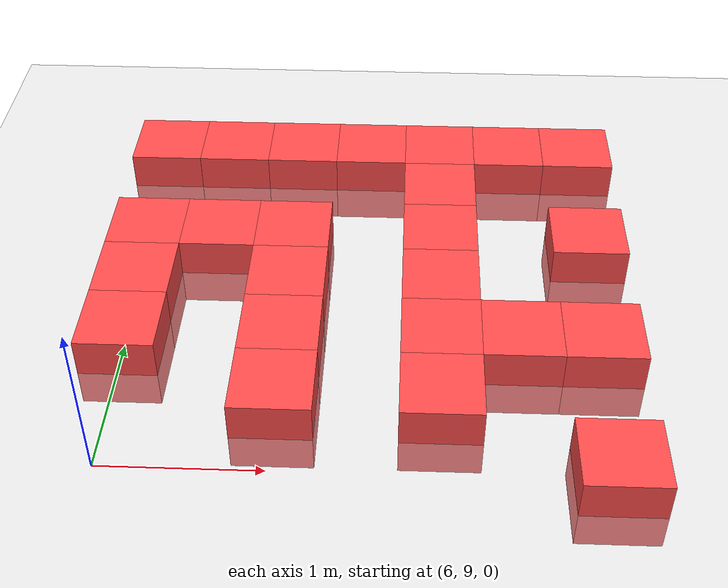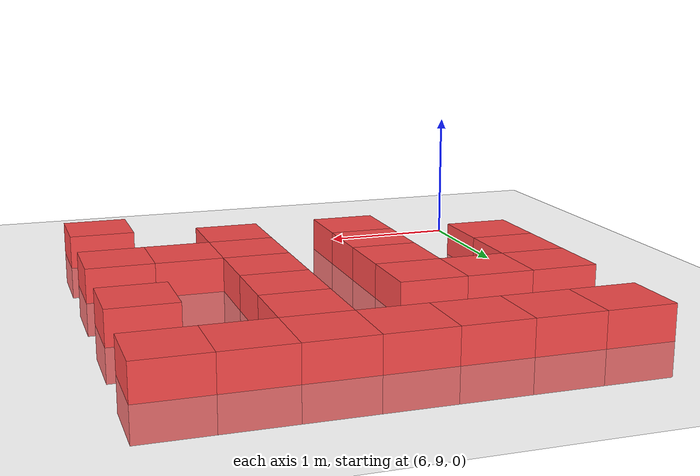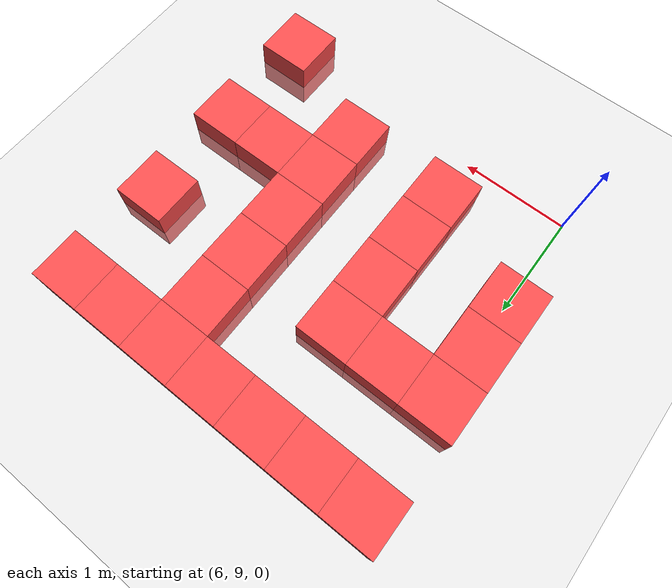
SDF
<sdf version="1.6">
 <world name="default">
  <model name="ground_plane">
   <static>1</static>
   <link name="link">
    <collision name="collision">
     <geometry><plane><normal>0 0 1</normal><size>100 100</size></plane></geometry>
     <surface><friction><ode><mu>100</mu><mu2>50</mu2></ode></friction></surface>
    </collision>
    <visual name="visual">
     <cast_shadows>0</cast_shadows>
     <geometry><plane><normal>0 0 1</normal><size>100 100</size></plane></geometry>
     <material>
      <script><uri>file://media/materials/scripts/gazebo.material</uri><name>Gazebo/Grey</name></script>
     </material>
    </visual>
   </link>
  </model>
  <model name="Box_Red_320">
   <link name="link_0">
    <inertial>
     <mass>1</mass>
     <inertia>
      <ixx>0.166667</ixx>
      <ixy>0</ixy>
      <ixz>0</ixz>
      <iyy>0.166667</iyy>
      <iyz>0</iyz>
      <izz>0.166667</izz>
     </inertia>
    </inertial>
    <visual name="visual">
     <geometry><box><size>0.5 0.5 0.5</size></box></geometry>
     <material>
      <lighting>1</lighting>
      <script><uri>file://media/materials/scripts/gazebo.material</uri><name>Gazebo/Grey</name></script>
      <ambient>1 0.3 0.3 1</ambient>
      <diffuse>0.7 0.7 0.7 1</diffuse>
      <specular>0.01 0.01 0.01 1</specular>
      <emissive>0 0 0 1</emissive>
      <shader type="vertex"><normal_map>__default__</normal_map></shader>
     </material>
    </visual>
    <collision name="collision">
     <geometry><box><size>0.5 0.5 0.5</size></box></geometry>
     <surface>
      <friction>
       <ode><mu>1</mu><mu2>1</mu2><fdir1>0 0 0</fdir1><slip1>0</slip1><slip2>0</slip2></ode>
       <torsional>
        <coefficient>1</coefficient>
        <patch_radius>0</patch_radius>
        <surface_radius>0</surface_radius>
        <use_patch_radius>1</use_patch_radius>
        <ode><slip>0</slip></ode>
       </torsional>
      </friction>
      <bounce><restitution_coefficient>0</restitution_coefficient><threshold>1e+06</threshold></bounce>
      <contact>
       <collide_without_contact>0</collide_without_contact>
       <collide_without_contact_bitmask>1</collide_without_contact_bitmask>
       <collide_bitmask>1</collide_bitmask>
       <ode>
        <soft_cfm>0</soft_cfm>
        <soft_erp>0.2</soft_erp>
        <kp>1e+13</kp>
        <kd>1</kd>
        <max_vel>0.01</max_vel>
        <min_depth>0</min_depth>
       </ode>
       <bullet>
        <split_impulse>1</split_impulse>
        <split_impulse_penetration_threshold>-0.01</split_impulse_penetration_threshold>
        <soft_cfm>0</soft_cfm>
        <soft_erp>0.2</soft_erp>
        <kp>1e+13</kp>
        <kd>1</kd>
       </bullet>
      </contact>
     </surface>
    </collision>
   </link>
   <static>0</static>
   <pose>6.000 10.000 0.000 0 0 0</pose>
  </model>
  <model name="Box_Red_321">
   <link name="link_0">
    <inertial>
     <mass>1</mass>
     <inertia>
      <ixx>0.166667</ixx>
      <ixy>0</ixy>
      <ixz>0</ixz>
      <iyy>0.166667</iyy>
      <iyz>0</iyz>
      <izz>0.166667</izz>
     </inertia>
    </inertial>
    <visual name="visual">
     <geometry><box><size>0.5 0.5 0.5</size></box></geometry>
     <material>
      <lighting>1</lighting>
      <script><uri>file://media/materials/scripts/gazebo.material</uri><name>Gazebo/Grey</name></script>
      <ambient>1 0.3 0.3 1</ambient>
      <diffuse>0.7 0.7 0.7 1</diffuse>
      <specular>0.01 0.01 0.01 1</specular>
      <emissive>0 0 0 1</emissive>
      <shader type="vertex"><normal_map>__default__</normal_map></shader>
     </material>
    </visual>
    <collision name="collision">
     <geometry><box><size>0.5 0.5 0.5</size></box></geometry>
     <surface>
      <friction>
       <ode><mu>1</mu><mu2>1</mu2><fdir1>0 0 0</fdir1><slip1>0</slip1><slip2>0</slip2></ode>
       <torsional>
        <coefficient>1</coefficient>
        <patch_radius>0</patch_radius>
        <surface_radius>0</surface_radius>
        <use_patch_radius>1</use_patch_radius>
        <ode><slip>0</slip></ode>
       </torsional>
      </friction>
      <bounce><restitution_coefficient>0</restitution_coefficient><threshold>1e+06</threshold></bounce>
      <contact>
       <collide_without_contact>0</collide_without_contact>
       <collide_without_contact_bitmask>1</collide_without_contact_bitmask>
       <collide_bitmask>1</collide_bitmask>
       <ode>
        <soft_cfm>0</soft_cfm>
        <soft_erp>0.2</soft_erp>
        <kp>1e+13</kp>
        <kd>1</kd>
        <max_vel>0.01</max_vel>
        <min_depth>0</min_depth>
       </ode>
       <bullet>
        <split_impulse>1</split_impulse>
        <split_impulse_penetration_threshold>-0.01</split_impulse_penetration_threshold>
        <soft_cfm>0</soft_cfm>
        <soft_erp>0.2</soft_erp>
        <kp>1e+13</kp>
        <kd>1</kd>
       </bullet>
      </contact>
     </surface>
    </collision>
   </link>
   <static>0</static>
   <pose>6.000 10.500 0.000 0 0 0</pose>
  </model>
  <model name="Box_Red_322">
   <link name="link_0">
    <inertial>
     <mass>1</mass>
     <inertia>
      <ixx>0.166667</ixx>
      <ixy>0</ixy>
      <ixz>0</ixz>
      <iyy>0.166667</iyy>
      <iyz>0</iyz>
      <izz>0.166667</izz>
     </inertia>
    </inertial>
    <visual name="visual">
     <geometry><box><size>0.5 0.5 0.5</size></box></geometry>
     <material>
      <lighting>1</lighting>
      <script><uri>file://media/materials/scripts/gazebo.material</uri><name>Gazebo/Grey</name></script>
      <ambient>1 0.3 0.3 1</ambient>
      <diffuse>0.7 0.7 0.7 1</diffuse>
      <specular>0.01 0.01 0.01 1</specular>
      <emissive>0 0 0 1</emissive>
      <shader type="vertex"><normal_map>__default__</normal_map></shader>
     </material>
    </visual>
    <collision name="collision">
     <geometry><box><size>0.5 0.5 0.5</size></box></geometry>
     <surface>
      <friction>
       <ode><mu>1</mu><mu2>1</mu2><fdir1>0 0 0</fdir1><slip1>0</slip1><slip2>0</slip2></ode>
       <torsional>
        <coefficient>1</coefficient>
        <patch_radius>0</patch_radius>
        <surface_radius>0</surface_radius>
        <use_patch_radius>1</use_patch_radius>
        <ode><slip>0</slip></ode>
       </torsional>
      </friction>
      <bounce><restitution_coefficient>0</restitution_coefficient><threshold>1e+06</threshold></bounce>
      <contact>
       <collide_without_contact>0</collide_without_contact>
       <collide_without_contact_bitmask>1</collide_without_contact_bitmask>
       <collide_bitmask>1</collide_bitmask>
       <ode>
        <soft_cfm>0</soft_cfm>
        <soft_erp>0.2</soft_erp>
        <kp>1e+13</kp>
        <kd>1</kd>
        <max_vel>0.01</max_vel>
        <min_depth>0</min_depth>
       </ode>
       <bullet>
        <split_impulse>1</split_impulse>
        <split_impulse_penetration_threshold>-0.01</split_impulse_penetration_threshold>
        <soft_cfm>0</soft_cfm>
        <soft_erp>0.2</soft_erp>
        <kp>1e+13</kp>
        <kd>1</kd>
       </bullet>
      </contact>
     </surface>
    </collision>
   </link>
   <static>0</static>
   <pose>6.000 11.000 0.000 0 0 0</pose>
  </model>
  <model name="Box_Red_324">
   <link name="link_0">
    <inertial>
     <mass>1</mass>
     <inertia>
      <ixx>0.166667</ixx>
      <ixy>0</ixy>
      <ixz>0</ixz>
      <iyy>0.166667</iyy>
      <iyz>0</iyz>
      <izz>0.166667</izz>
     </inertia>
    </inertial>
    <visual name="visual">
     <geometry><box><size>0.5 0.5 0.5</size></box></geometry>
     <material>
      <lighting>1</lighting>
      <script><uri>file://media/materials/scripts/gazebo.material</uri><name>Gazebo/Grey</name></script>
      <ambient>1 0.3 0.3 1</ambient>
      <diffuse>0.7 0.7 0.7 1</diffuse>
      <specular>0.01 0.01 0.01 1</specular>
      <emissive>0 0 0 1</emissive>
      <shader type="vertex"><normal_map>__default__</normal_map></shader>
     </material>
    </visual>
    <collision name="collision">
     <geometry><box><size>0.5 0.5 0.5</size></box></geometry>
     <surface>
      <friction>
       <ode><mu>1</mu><mu2>1</mu2><fdir1>0 0 0</fdir1><slip1>0</slip1><slip2>0</slip2></ode>
       <torsional>
        <coefficient>1</coefficient>
        <patch_radius>0</patch_radius>
        <surface_radius>0</surface_radius>
        <use_patch_radius>1</use_patch_radius>
        <ode><slip>0</slip></ode>
       </torsional>
      </friction>
      <bounce><restitution_coefficient>0</restitution_coefficient><threshold>1e+06</threshold></bounce>
      <contact>
       <collide_without_contact>0</collide_without_contact>
       <collide_without_contact_bitmask>1</collide_without_contact_bitmask>
       <collide_bitmask>1</collide_bitmask>
       <ode>
        <soft_cfm>0</soft_cfm>
        <soft_erp>0.2</soft_erp>
        <kp>1e+13</kp>
        <kd>1</kd>
        <max_vel>0.01</max_vel>
        <min_depth>0</min_depth>
       </ode>
       <bullet>
        <split_impulse>1</split_impulse>
        <split_impulse_penetration_threshold>-0.01</split_impulse_penetration_threshold>
        <soft_cfm>0</soft_cfm>
        <soft_erp>0.2</soft_erp>
        <kp>1e+13</kp>
        <kd>1</kd>
       </bullet>
      </contact>
     </surface>
    </collision>
   </link>
   <static>0</static>
   <pose>6.000 12.000 0.000 0 0 0</pose>
  </model>
  <model name="Box_Red_347">
   <link name="link_0">
    <inertial>
     <mass>1</mass>
     <inertia>
      <ixx>0.166667</ixx>
      <ixy>0</ixy>
      <ixz>0</ixz>
      <iyy>0.166667</iyy>
      <iyz>0</iyz>
      <izz>0.166667</izz>
     </inertia>
    </inertial>
    <visual name="visual">
     <geometry><box><size>0.5 0.5 0.5</size></box></geometry>
     <material>
      <lighting>1</lighting>
      <script><uri>file://media/materials/scripts/gazebo.material</uri><name>Gazebo/Grey</name></script>
      <ambient>1 0.3 0.3 1</ambient>
      <diffuse>0.7 0.7 0.7 1</diffuse>
      <specular>0.01 0.01 0.01 1</specular>
      <emissive>0 0 0 1</emissive>
      <shader type="vertex"><normal_map>__default__</normal_map></shader>
     </material>
    </visual>
    <collision name="collision">
     <geometry><box><size>0.5 0.5 0.5</size></box></geometry>
     <surface>
      <friction>
       <ode><mu>1</mu><mu2>1</mu2><fdir1>0 0 0</fdir1><slip1>0</slip1><slip2>0</slip2></ode>
       <torsional>
        <coefficient>1</coefficient>
        <patch_radius>0</patch_radius>
        <surface_radius>0</surface_radius>
        <use_patch_radius>1</use_patch_radius>
        <ode><slip>0</slip></ode>
       </torsional>
      </friction>
      <bounce><restitution_coefficient>0</restitution_coefficient><threshold>1e+06</threshold></bounce>
      <contact>
       <collide_without_contact>0</collide_without_contact>
       <collide_without_contact_bitmask>1</collide_without_contact_bitmask>
       <collide_bitmask>1</collide_bitmask>
       <ode>
        <soft_cfm>0</soft_cfm>
        <soft_erp>0.2</soft_erp>
        <kp>1e+13</kp>
        <kd>1</kd>
        <max_vel>0.01</max_vel>
        <min_depth>0</min_depth>
       </ode>
       <bullet>
        <split_impulse>1</split_impulse>
        <split_impulse_penetration_threshold>-0.01</split_impulse_penetration_threshold>
        <soft_cfm>0</soft_cfm>
        <soft_erp>0.2</soft_erp>
        <kp>1e+13</kp>
        <kd>1</kd>
       </bullet>
      </contact>
     </surface>
    </collision>
   </link>
   <static>0</static>
   <pose>6.500 11.000 0.000 0 0 0</pose>
  </model>
  <model name="Box_Red_349">
   <link name="link_0">
    <inertial>
     <mass>1</mass>
     <inertia>
      <ixx>0.166667</ixx>
      <ixy>0</ixy>
      <ixz>0</ixz>
      <iyy>0.166667</iyy>
      <iyz>0</iyz>
      <izz>0.166667</izz>
     </inertia>
    </inertial>
    <visual name="visual">
     <geometry><box><size>0.5 0.5 0.5</size></box></geometry>
     <material>
      <lighting>1</lighting>
      <script><uri>file://media/materials/scripts/gazebo.material</uri><name>Gazebo/Grey</name></script>
      <ambient>1 0.3 0.3 1</ambient>
      <diffuse>0.7 0.7 0.7 1</diffuse>
      <specular>0.01 0.01 0.01 1</specular>
      <emissive>0 0 0 1</emissive>
      <shader type="vertex"><normal_map>__default__</normal_map></shader>
     </material>
    </visual>
    <collision name="collision">
     <geometry><box><size>0.5 0.5 0.5</size></box></geometry>
     <surface>
      <friction>
       <ode><mu>1</mu><mu2>1</mu2><fdir1>0 0 0</fdir1><slip1>0</slip1><slip2>0</slip2></ode>
       <torsional>
        <coefficient>1</coefficient>
        <patch_radius>0</patch_radius>
        <surface_radius>0</surface_radius>
        <use_patch_radius>1</use_patch_radius>
        <ode><slip>0</slip></ode>
       </torsional>
      </friction>
      <bounce><restitution_coefficient>0</restitution_coefficient><threshold>1e+06</threshold></bounce>
      <contact>
       <collide_without_contact>0</collide_without_contact>
       <collide_without_contact_bitmask>1</collide_without_contact_bitmask>
       <collide_bitmask>1</collide_bitmask>
       <ode>
        <soft_cfm>0</soft_cfm>
        <soft_erp>0.2</soft_erp>
        <kp>1e+13</kp>
        <kd>1</kd>
        <max_vel>0.01</max_vel>
        <min_depth>0</min_depth>
       </ode>
       <bullet>
        <split_impulse>1</split_impulse>
        <split_impulse_penetration_threshold>-0.01</split_impulse_penetration_threshold>
        <soft_cfm>0</soft_cfm>
        <soft_erp>0.2</soft_erp>
        <kp>1e+13</kp>
        <kd>1</kd>
       </bullet>
      </contact>
     </surface>
    </collision>
   </link>
   <static>0</static>
   <pose>6.500 12.000 0.000 0 0 0</pose>
  </model>
  <model name="Box_Red_369">
   <link name="link_0">
    <inertial>
     <mass>1</mass>
     <inertia>
      <ixx>0.166667</ixx>
      <ixy>0</ixy>
      <ixz>0</ixz>
      <iyy>0.166667</iyy>
      <iyz>0</iyz>
      <izz>0.166667</izz>
     </inertia>
    </inertial>
    <visual name="visual">
     <geometry><box><size>0.5 0.5 0.5</size></box></geometry>
     <material>
      <lighting>1</lighting>
      <script><uri>file://media/materials/scripts/gazebo.material</uri><name>Gazebo/Grey</name></script>
      <ambient>1 0.3 0.3 1</ambient>
      <diffuse>0.7 0.7 0.7 1</diffuse>
      <specular>0.01 0.01 0.01 1</specular>
      <emissive>0 0 0 1</emissive>
      <shader type="vertex"><normal_map>__default__</normal_map></shader>
     </material>
    </visual>
    <collision name="collision">
     <geometry><box><size>0.5 0.5 0.5</size></box></geometry>
     <surface>
      <friction>
       <ode><mu>1</mu><mu2>1</mu2><fdir1>0 0 0</fdir1><slip1>0</slip1><slip2>0</slip2></ode>
       <torsional>
        <coefficient>1</coefficient>
        <patch_radius>0</patch_radius>
        <surface_radius>0</surface_radius>
        <use_patch_radius>1</use_patch_radius>
        <ode><slip>0</slip></ode>
       </torsional>
      </friction>
      <bounce><restitution_coefficient>0</restitution_coefficient><threshold>1e+06</threshold></bounce>
      <contact>
       <collide_without_contact>0</collide_without_contact>
       <collide_without_contact_bitmask>1</collide_without_contact_bitmask>
       <collide_bitmask>1</collide_bitmask>
       <ode>
        <soft_cfm>0</soft_cfm>
        <soft_erp>0.2</soft_erp>
        <kp>1e+13</kp>
        <kd>1</kd>
        <max_vel>0.01</max_vel>
        <min_depth>0</min_depth>
       </ode>
       <bullet>
        <split_impulse>1</split_impulse>
        <split_impulse_penetration_threshold>-0.01</split_impulse_penetration_threshold>
        <soft_cfm>0</soft_cfm>
        <soft_erp>0.2</soft_erp>
        <kp>1e+13</kp>
        <kd>1</kd>
       </bullet>
      </contact>
     </surface>
    </collision>
   </link>
   <static>0</static>
   <pose>7.000 9.500 0.000 0 0 0</pose>
  </model>
  <model name="Box_Red_370">
   <link name="link_0">
    <inertial>
     <mass>1</mass>
     <inertia>
      <ixx>0.166667</ixx>
      <ixy>0</ixy>
      <ixz>0</ixz>
      <iyy>0.166667</iyy>
      <iyz>0</iyz>
      <izz>0.166667</izz>
     </inertia>
    </inertial>
    <visual name="visual">
     <geometry><box><size>0.5 0.5 0.5</size></box></geometry>
     <material>
      <lighting>1</lighting>
      <script><uri>file://media/materials/scripts/gazebo.material</uri><name>Gazebo/Grey</name></script>
      <ambient>1 0.3 0.3 1</ambient>
      <diffuse>0.7 0.7 0.7 1</diffuse>
      <specular>0.01 0.01 0.01 1</specular>
      <emissive>0 0 0 1</emissive>
      <shader type="vertex"><normal_map>__default__</normal_map></shader>
     </material>
    </visual>
    <collision name="collision">
     <geometry><box><size>0.5 0.5 0.5</size></box></geometry>
     <surface>
      <friction>
       <ode><mu>1</mu><mu2>1</mu2><fdir1>0 0 0</fdir1><slip1>0</slip1><slip2>0</slip2></ode>
       <torsional>
        <coefficient>1</coefficient>
        <patch_radius>0</patch_radius>
        <surface_radius>0</surface_radius>
        <use_patch_radius>1</use_patch_radius>
        <ode><slip>0</slip></ode>
       </torsional>
      </friction>
      <bounce><restitution_coefficient>0</restitution_coefficient><threshold>1e+06</threshold></bounce>
      <contact>
       <collide_without_contact>0</collide_without_contact>
       <collide_without_contact_bitmask>1</collide_without_contact_bitmask>
       <collide_bitmask>1</collide_bitmask>
       <ode>
        <soft_cfm>0</soft_cfm>
        <soft_erp>0.2</soft_erp>
        <kp>1e+13</kp>
        <kd>1</kd>
        <max_vel>0.01</max_vel>
        <min_depth>0</min_depth>
       </ode>
       <bullet>
        <split_impulse>1</split_impulse>
        <split_impulse_penetration_threshold>-0.01</split_impulse_penetration_threshold>
        <soft_cfm>0</soft_cfm>
        <soft_erp>0.2</soft_erp>
        <kp>1e+13</kp>
        <kd>1</kd>
       </bullet>
      </contact>
     </surface>
    </collision>
   </link>
   <static>0</static>
   <pose>7.000 10.000 0.000 0 0 0</pose>
  </model>
  <model name="Box_Red_371">
   <link name="link_0">
    <inertial>
     <mass>1</mass>
     <inertia>
      <ixx>0.166667</ixx>
      <ixy>0</ixy>
      <ixz>0</ixz>
      <iyy>0.166667</iyy>
      <iyz>0</iyz>
      <izz>0.166667</izz>
     </inertia>
    </inertial>
    <visual name="visual">
     <geometry><box><size>0.5 0.5 0.5</size></box></geometry>
     <material>
      <lighting>1</lighting>
      <script><uri>file://media/materials/scripts/gazebo.material</uri><name>Gazebo/Grey</name></script>
      <ambient>1 0.3 0.3 1</ambient>
      <diffuse>0.7 0.7 0.7 1</diffuse>
      <specular>0.01 0.01 0.01 1</specular>
      <emissive>0 0 0 1</emissive>
      <shader type="vertex"><normal_map>__default__</normal_map></shader>
     </material>
    </visual>
    <collision name="collision">
     <geometry><box><size>0.5 0.5 0.5</size></box></geometry>
     <surface>
      <friction>
       <ode><mu>1</mu><mu2>1</mu2><fdir1>0 0 0</fdir1><slip1>0</slip1><slip2>0</slip2></ode>
       <torsional>
        <coefficient>1</coefficient>
        <patch_radius>0</patch_radius>
        <surface_radius>0</surface_radius>
        <use_patch_radius>1</use_patch_radius>
        <ode><slip>0</slip></ode>
       </torsional>
      </friction>
      <bounce><restitution_coefficient>0</restitution_coefficient><threshold>1e+06</threshold></bounce>
      <contact>
       <collide_without_contact>0</collide_without_contact>
       <collide_without_contact_bitmask>1</collide_without_contact_bitmask>
       <collide_bitmask>1</collide_bitmask>
       <ode>
        <soft_cfm>0</soft_cfm>
        <soft_erp>0.2</soft_erp>
        <kp>1e+13</kp>
        <kd>1</kd>
        <max_vel>0.01</max_vel>
        <min_depth>0</min_depth>
       </ode>
       <bullet>
        <split_impulse>1</split_impulse>
        <split_impulse_penetration_threshold>-0.01</split_impulse_penetration_threshold>
        <soft_cfm>0</soft_cfm>
        <soft_erp>0.2</soft_erp>
        <kp>1e+13</kp>
        <kd>1</kd>
       </bullet>
      </contact>
     </surface>
    </collision>
   </link>
   <static>0</static>
   <pose>7.000 10.500 0.000 0 0 0</pose>
  </model>
  <model name="Box_Red_372">
   <link name="link_0">
    <inertial>
     <mass>1</mass>
     <inertia>
      <ixx>0.166667</ixx>
      <ixy>0</ixy>
      <ixz>0</ixz>
      <iyy>0.166667</iyy>
      <iyz>0</iyz>
      <izz>0.166667</izz>
     </inertia>
    </inertial>
    <visual name="visual">
     <geometry><box><size>0.5 0.5 0.5</size></box></geometry>
     <material>
      <lighting>1</lighting>
      <script><uri>file://media/materials/scripts/gazebo.material</uri><name>Gazebo/Grey</name></script>
      <ambient>1 0.3 0.3 1</ambient>
      <diffuse>0.7 0.7 0.7 1</diffuse>
      <specular>0.01 0.01 0.01 1</specular>
      <emissive>0 0 0 1</emissive>
      <shader type="vertex"><normal_map>__default__</normal_map></shader>
     </material>
    </visual>
    <collision name="collision">
     <geometry><box><size>0.5 0.5 0.5</size></box></geometry>
     <surface>
      <friction>
       <ode><mu>1</mu><mu2>1</mu2><fdir1>0 0 0</fdir1><slip1>0</slip1><slip2>0</slip2></ode>
       <torsional>
        <coefficient>1</coefficient>
        <patch_radius>0</patch_radius>
        <surface_radius>0</surface_radius>
        <use_patch_radius>1</use_patch_radius>
        <ode><slip>0</slip></ode>
       </torsional>
      </friction>
      <bounce><restitution_coefficient>0</restitution_coefficient><threshold>1e+06</threshold></bounce>
      <contact>
       <collide_without_contact>0</collide_without_contact>
       <collide_without_contact_bitmask>1</collide_without_contact_bitmask>
       <collide_bitmask>1</collide_bitmask>
       <ode>
        <soft_cfm>0</soft_cfm>
        <soft_erp>0.2</soft_erp>
        <kp>1e+13</kp>
        <kd>1</kd>
        <max_vel>0.01</max_vel>
        <min_depth>0</min_depth>
       </ode>
       <bullet>
        <split_impulse>1</split_impulse>
        <split_impulse_penetration_threshold>-0.01</split_impulse_penetration_threshold>
        <soft_cfm>0</soft_cfm>
        <soft_erp>0.2</soft_erp>
        <kp>1e+13</kp>
        <kd>1</kd>
       </bullet>
      </contact>
     </surface>
    </collision>
   </link>
   <static>0</static>
   <pose>7.000 11.000 0.000 0 0 0</pose>
  </model>
  <model name="Box_Red_374">
   <link name="link_0">
    <inertial>
     <mass>1</mass>
     <inertia>
      <ixx>0.166667</ixx>
      <ixy>0</ixy>
      <ixz>0</ixz>
      <iyy>0.166667</iyy>
      <iyz>0</iyz>
      <izz>0.166667</izz>
     </inertia>
    </inertial>
    <visual name="visual">
     <geometry><box><size>0.5 0.5 0.5</size></box></geometry>
     <material>
      <lighting>1</lighting>
      <script><uri>file://media/materials/scripts/gazebo.material</uri><name>Gazebo/Grey</name></script>
      <ambient>1 0.3 0.3 1</ambient>
      <diffuse>0.7 0.7 0.7 1</diffuse>
      <specular>0.01 0.01 0.01 1</specular>
      <emissive>0 0 0 1</emissive>
      <shader type="vertex"><normal_map>__default__</normal_map></shader>
     </material>
    </visual>
    <collision name="collision">
     <geometry><box><size>0.5 0.5 0.5</size></box></geometry>
     <surface>
      <friction>
       <ode><mu>1</mu><mu2>1</mu2><fdir1>0 0 0</fdir1><slip1>0</slip1><slip2>0</slip2></ode>
       <torsional>
        <coefficient>1</coefficient>
        <patch_radius>0</patch_radius>
        <surface_radius>0</surface_radius>
        <use_patch_radius>1</use_patch_radius>
        <ode><slip>0</slip></ode>
       </torsional>
      </friction>
      <bounce><restitution_coefficient>0</restitution_coefficient><threshold>1e+06</threshold></bounce>
      <contact>
       <collide_without_contact>0</collide_without_contact>
       <collide_without_contact_bitmask>1</collide_without_contact_bitmask>
       <collide_bitmask>1</collide_bitmask>
       <ode>
        <soft_cfm>0</soft_cfm>
        <soft_erp>0.2</soft_erp>
        <kp>1e+13</kp>
        <kd>1</kd>
        <max_vel>0.01</max_vel>
        <min_depth>0</min_depth>
       </ode>
       <bullet>
        <split_impulse>1</split_impulse>
        <split_impulse_penetration_threshold>-0.01</split_impulse_penetration_threshold>
        <soft_cfm>0</soft_cfm>
        <soft_erp>0.2</soft_erp>
        <kp>1e+13</kp>
        <kd>1</kd>
       </bullet>
      </contact>
     </surface>
    </collision>
   </link>
   <static>0</static>
   <pose>7.000 12.000 0.000 0 0 0</pose>
  </model>
  <model name="Box_Red_399">
   <link name="link_0">
    <inertial>
     <mass>1</mass>
     <inertia>
      <ixx>0.166667</ixx>
      <ixy>0</ixy>
      <ixz>0</ixz>
      <iyy>0.166667</iyy>
      <iyz>0</iyz>
      <izz>0.166667</izz>
     </inertia>
    </inertial>
    <visual name="visual">
     <geometry><box><size>0.5 0.5 0.5</size></box></geometry>
     <material>
      <lighting>1</lighting>
      <script><uri>file://media/materials/scripts/gazebo.material</uri><name>Gazebo/Grey</name></script>
      <ambient>1 0.3 0.3 1</ambient>
      <diffuse>0.7 0.7 0.7 1</diffuse>
      <specular>0.01 0.01 0.01 1</specular>
      <emissive>0 0 0 1</emissive>
      <shader type="vertex"><normal_map>__default__</normal_map></shader>
     </material>
    </visual>
    <collision name="collision">
     <geometry><box><size>0.5 0.5 0.5</size></box></geometry>
     <surface>
      <friction>
       <ode><mu>1</mu><mu2>1</mu2><fdir1>0 0 0</fdir1><slip1>0</slip1><slip2>0</slip2></ode>
       <torsional>
        <coefficient>1</coefficient>
        <patch_radius>0</patch_radius>
        <surface_radius>0</surface_radius>
        <use_patch_radius>1</use_patch_radius>
        <ode><slip>0</slip></ode>
       </torsional>
      </friction>
      <bounce><restitution_coefficient>0</restitution_coefficient><threshold>1e+06</threshold></bounce>
      <contact>
       <collide_without_contact>0</collide_without_contact>
       <collide_without_contact_bitmask>1</collide_without_contact_bitmask>
       <collide_bitmask>1</collide_bitmask>
       <ode>
        <soft_cfm>0</soft_cfm>
        <soft_erp>0.2</soft_erp>
        <kp>1e+13</kp>
        <kd>1</kd>
        <max_vel>0.01</max_vel>
        <min_depth>0</min_depth>
       </ode>
       <bullet>
        <split_impulse>1</split_impulse>
        <split_impulse_penetration_threshold>-0.01</split_impulse_penetration_threshold>
        <soft_cfm>0</soft_cfm>
        <soft_erp>0.2</soft_erp>
        <kp>1e+13</kp>
        <kd>1</kd>
       </bullet>
      </contact>
     </surface>
    </collision>
   </link>
   <static>0</static>
   <pose>7.500 12.000 0.000 0 0 0</pose>
  </model>
  <model name="Box_Red_419">
   <link name="link_0">
    <inertial>
     <mass>1</mass>
     <inertia>
      <ixx>0.166667</ixx>
      <ixy>0</ixy>
      <ixz>0</ixz>
      <iyy>0.166667</iyy>
      <iyz>0</iyz>
      <izz>0.166667</izz>
     </inertia>
    </inertial>
    <visual name="visual">
     <geometry><box><size>0.5 0.5 0.5</size></box></geometry>
     <material>
      <lighting>1</lighting>
      <script><uri>file://media/materials/scripts/gazebo.material</uri><name>Gazebo/Grey</name></script>
      <ambient>1 0.3 0.3 1</ambient>
      <diffuse>0.7 0.7 0.7 1</diffuse>
      <specular>0.01 0.01 0.01 1</specular>
      <emissive>0 0 0 1</emissive>
      <shader type="vertex"><normal_map>__default__</normal_map></shader>
     </material>
    </visual>
    <collision name="collision">
     <geometry><box><size>0.5 0.5 0.5</size></box></geometry>
     <surface>
      <friction>
       <ode><mu>1</mu><mu2>1</mu2><fdir1>0 0 0</fdir1><slip1>0</slip1><slip2>0</slip2></ode>
       <torsional>
        <coefficient>1</coefficient>
        <patch_radius>0</patch_radius>
        <surface_radius>0</surface_radius>
        <use_patch_radius>1</use_patch_radius>
        <ode><slip>0</slip></ode>
       </torsional>
      </friction>
      <bounce><restitution_coefficient>0</restitution_coefficient><threshold>1e+06</threshold></bounce>
      <contact>
       <collide_without_contact>0</collide_without_contact>
       <collide_without_contact_bitmask>1</collide_without_contact_bitmask>
       <collide_bitmask>1</collide_bitmask>
       <ode>
        <soft_cfm>0</soft_cfm>
        <soft_erp>0.2</soft_erp>
        <kp>1e+13</kp>
        <kd>1</kd>
        <max_vel>0.01</max_vel>
        <min_depth>0</min_depth>
       </ode>
       <bullet>
        <split_impulse>1</split_impulse>
        <split_impulse_penetration_threshold>-0.01</split_impulse_penetration_threshold>
        <soft_cfm>0</soft_cfm>
        <soft_erp>0.2</soft_erp>
        <kp>1e+13</kp>
        <kd>1</kd>
       </bullet>
      </contact>
     </surface>
    </collision>
   </link>
   <static>0</static>
   <pose>8.000 9.500 0.000 0 0 0</pose>
  </model>
  <model name="Box_Red_420">
   <link name="link_0">
    <inertial>
     <mass>1</mass>
     <inertia>
      <ixx>0.166667</ixx>
      <ixy>0</ixy>
      <ixz>0</ixz>
      <iyy>0.166667</iyy>
      <iyz>0</iyz>
      <izz>0.166667</izz>
     </inertia>
    </inertial>
    <visual name="visual">
     <geometry><box><size>0.5 0.5 0.5</size></box></geometry>
     <material>
      <lighting>1</lighting>
      <script><uri>file://media/materials/scripts/gazebo.material</uri><name>Gazebo/Grey</name></script>
      <ambient>1 0.3 0.3 1</ambient>
      <diffuse>0.7 0.7 0.7 1</diffuse>
      <specular>0.01 0.01 0.01 1</specular>
      <emissive>0 0 0 1</emissive>
      <shader type="vertex"><normal_map>__default__</normal_map></shader>
     </material>
    </visual>
    <collision name="collision">
     <geometry><box><size>0.5 0.5 0.5</size></box></geometry>
     <surface>
      <friction>
       <ode><mu>1</mu><mu2>1</mu2><fdir1>0 0 0</fdir1><slip1>0</slip1><slip2>0</slip2></ode>
       <torsional>
        <coefficient>1</coefficient>
        <patch_radius>0</patch_radius>
        <surface_radius>0</surface_radius>
        <use_patch_radius>1</use_patch_radius>
        <ode><slip>0</slip></ode>
       </torsional>
      </friction>
      <bounce><restitution_coefficient>0</restitution_coefficient><threshold>1e+06</threshold></bounce>
      <contact>
       <collide_without_contact>0</collide_without_contact>
       <collide_without_contact_bitmask>1</collide_without_contact_bitmask>
       <collide_bitmask>1</collide_bitmask>
       <ode>
        <soft_cfm>0</soft_cfm>
        <soft_erp>0.2</soft_erp>
        <kp>1e+13</kp>
        <kd>1</kd>
        <max_vel>0.01</max_vel>
        <min_depth>0</min_depth>
       </ode>
       <bullet>
        <split_impulse>1</split_impulse>
        <split_impulse_penetration_threshold>-0.01</split_impulse_penetration_threshold>
        <soft_cfm>0</soft_cfm>
        <soft_erp>0.2</soft_erp>
        <kp>1e+13</kp>
        <kd>1</kd>
       </bullet>
      </contact>
     </surface>
    </collision>
   </link>
   <static>0</static>
   <pose>8.000 10.000 0.000 0 0 0</pose>
  </model>
  <model name="Box_Red_421">
   <link name="link_0">
    <inertial>
     <mass>1</mass>
     <inertia>
      <ixx>0.166667</ixx>
      <ixy>0</ixy>
      <ixz>0</ixz>
      <iyy>0.166667</iyy>
      <iyz>0</iyz>
      <izz>0.166667</izz>
     </inertia>
    </inertial>
    <visual name="visual">
     <geometry><box><size>0.5 0.5 0.5</size></box></geometry>
     <material>
      <lighting>1</lighting>
      <script><uri>file://media/materials/scripts/gazebo.material</uri><name>Gazebo/Grey</name></script>
      <ambient>1 0.3 0.3 1</ambient>
      <diffuse>0.7 0.7 0.7 1</diffuse>
      <specular>0.01 0.01 0.01 1</specular>
      <emissive>0 0 0 1</emissive>
      <shader type="vertex"><normal_map>__default__</normal_map></shader>
     </material>
    </visual>
    <collision name="collision">
     <geometry><box><size>0.5 0.5 0.5</size></box></geometry>
     <surface>
      <friction>
       <ode><mu>1</mu><mu2>1</mu2><fdir1>0 0 0</fdir1><slip1>0</slip1><slip2>0</slip2></ode>
       <torsional>
        <coefficient>1</coefficient>
        <patch_radius>0</patch_radius>
        <surface_radius>0</surface_radius>
        <use_patch_radius>1</use_patch_radius>
        <ode><slip>0</slip></ode>
       </torsional>
      </friction>
      <bounce><restitution_coefficient>0</restitution_coefficient><threshold>1e+06</threshold></bounce>
      <contact>
       <collide_without_contact>0</collide_without_contact>
       <collide_without_contact_bitmask>1</collide_without_contact_bitmask>
       <collide_bitmask>1</collide_bitmask>
       <ode>
        <soft_cfm>0</soft_cfm>
        <soft_erp>0.2</soft_erp>
        <kp>1e+13</kp>
        <kd>1</kd>
        <max_vel>0.01</max_vel>
        <min_depth>0</min_depth>
       </ode>
       <bullet>
        <split_impulse>1</split_impulse>
        <split_impulse_penetration_threshold>-0.01</split_impulse_penetration_threshold>
        <soft_cfm>0</soft_cfm>
        <soft_erp>0.2</soft_erp>
        <kp>1e+13</kp>
        <kd>1</kd>
       </bullet>
      </contact>
     </surface>
    </collision>
   </link>
   <static>0</static>
   <pose>8.000 10.500 0.000 0 0 0</pose>
  </model>
  <model name="Box_Red_422">
   <link name="link_0">
    <inertial>
     <mass>1</mass>
     <inertia>
      <ixx>0.166667</ixx>
      <ixy>0</ixy>
      <ixz>0</ixz>
      <iyy>0.166667</iyy>
      <iyz>0</iyz>
      <izz>0.166667</izz>
     </inertia>
    </inertial>
    <visual name="visual">
     <geometry><box><size>0.5 0.5 0.5</size></box></geometry>
     <material>
      <lighting>1</lighting>
      <script><uri>file://media/materials/scripts/gazebo.material</uri><name>Gazebo/Grey</name></script>
      <ambient>1 0.3 0.3 1</ambient>
      <diffuse>0.7 0.7 0.7 1</diffuse>
      <specular>0.01 0.01 0.01 1</specular>
      <emissive>0 0 0 1</emissive>
      <shader type="vertex"><normal_map>__default__</normal_map></shader>
     </material>
    </visual>
    <collision name="collision">
     <geometry><box><size>0.5 0.5 0.5</size></box></geometry>
     <surface>
      <friction>
       <ode><mu>1</mu><mu2>1</mu2><fdir1>0 0 0</fdir1><slip1>0</slip1><slip2>0</slip2></ode>
       <torsional>
        <coefficient>1</coefficient>
        <patch_radius>0</patch_radius>
        <surface_radius>0</surface_radius>
        <use_patch_radius>1</use_patch_radius>
        <ode><slip>0</slip></ode>
       </torsional>
      </friction>
      <bounce><restitution_coefficient>0</restitution_coefficient><threshold>1e+06</threshold></bounce>
      <contact>
       <collide_without_contact>0</collide_without_contact>
       <collide_without_contact_bitmask>1</collide_without_contact_bitmask>
       <collide_bitmask>1</collide_bitmask>
       <ode>
        <soft_cfm>0</soft_cfm>
        <soft_erp>0.2</soft_erp>
        <kp>1e+13</kp>
        <kd>1</kd>
        <max_vel>0.01</max_vel>
        <min_depth>0</min_depth>
       </ode>
       <bullet>
        <split_impulse>1</split_impulse>
        <split_impulse_penetration_threshold>-0.01</split_impulse_penetration_threshold>
        <soft_cfm>0</soft_cfm>
        <soft_erp>0.2</soft_erp>
        <kp>1e+13</kp>
        <kd>1</kd>
       </bullet>
      </contact>
     </surface>
    </collision>
   </link>
   <static>0</static>
   <pose>8.000 11.000 0.000 0 0 0</pose>
  </model>
  <model name="Box_Red_423">
   <link name="link_0">
    <inertial>
     <mass>1</mass>
     <inertia>
      <ixx>0.166667</ixx>
      <ixy>0</ixy>
      <ixz>0</ixz>
      <iyy>0.166667</iyy>
      <iyz>0</iyz>
      <izz>0.166667</izz>
     </inertia>
    </inertial>
    <visual name="visual">
     <geometry><box><size>0.5 0.5 0.5</size></box></geometry>
     <material>
      <lighting>1</lighting>
      <script><uri>file://media/materials/scripts/gazebo.material</uri><name>Gazebo/Grey</name></script>
      <ambient>1 0.3 0.3 1</ambient>
      <diffuse>0.7 0.7 0.7 1</diffuse>
      <specular>0.01 0.01 0.01 1</specular>
      <emissive>0 0 0 1</emissive>
      <shader type="vertex"><normal_map>__default__</normal_map></shader>
     </material>
    </visual>
    <collision name="collision">
     <geometry><box><size>0.5 0.5 0.5</size></box></geometry>
     <surface>
      <friction>
       <ode><mu>1</mu><mu2>1</mu2><fdir1>0 0 0</fdir1><slip1>0</slip1><slip2>0</slip2></ode>
       <torsional>
        <coefficient>1</coefficient>
        <patch_radius>0</patch_radius>
        <surface_radius>0</surface_radius>
        <use_patch_radius>1</use_patch_radius>
        <ode><slip>0</slip></ode>
       </torsional>
      </friction>
      <bounce><restitution_coefficient>0</restitution_coefficient><threshold>1e+06</threshold></bounce>
      <contact>
       <collide_without_contact>0</collide_without_contact>
       <collide_without_contact_bitmask>1</collide_without_contact_bitmask>
       <collide_bitmask>1</collide_bitmask>
       <ode>
        <soft_cfm>0</soft_cfm>
        <soft_erp>0.2</soft_erp>
        <kp>1e+13</kp>
        <kd>1</kd>
        <max_vel>0.01</max_vel>
        <min_depth>0</min_depth>
       </ode>
       <bullet>
        <split_impulse>1</split_impulse>
        <split_impulse_penetration_threshold>-0.01</split_impulse_penetration_threshold>
        <soft_cfm>0</soft_cfm>
        <soft_erp>0.2</soft_erp>
        <kp>1e+13</kp>
        <kd>1</kd>
       </bullet>
      </contact>
     </surface>
    </collision>
   </link>
   <static>0</static>
   <pose>8.000 11.500 0.000 0 0 0</pose>
  </model>
  <model name="Box_Red_424">
   <link name="link_0">
    <inertial>
     <mass>1</mass>
     <inertia>
      <ixx>0.166667</ixx>
      <ixy>0</ixy>
      <ixz>0</ixz>
      <iyy>0.166667</iyy>
      <iyz>0</iyz>
      <izz>0.166667</izz>
     </inertia>
    </inertial>
    <visual name="visual">
     <geometry><box><size>0.5 0.5 0.5</size></box></geometry>
     <material>
      <lighting>1</lighting>
      <script><uri>file://media/materials/scripts/gazebo.material</uri><name>Gazebo/Grey</name></script>
      <ambient>1 0.3 0.3 1</ambient>
      <diffuse>0.7 0.7 0.7 1</diffuse>
      <specular>0.01 0.01 0.01 1</specular>
      <emissive>0 0 0 1</emissive>
      <shader type="vertex"><normal_map>__default__</normal_map></shader>
     </material>
    </visual>
    <collision name="collision">
     <geometry><box><size>0.5 0.5 0.5</size></box></geometry>
     <surface>
      <friction>
       <ode><mu>1</mu><mu2>1</mu2><fdir1>0 0 0</fdir1><slip1>0</slip1><slip2>0</slip2></ode>
       <torsional>
        <coefficient>1</coefficient>
        <patch_radius>0</patch_radius>
        <surface_radius>0</surface_radius>
        <use_patch_radius>1</use_patch_radius>
        <ode><slip>0</slip></ode>
       </torsional>
      </friction>
      <bounce><restitution_coefficient>0</restitution_coefficient><threshold>1e+06</threshold></bounce>
      <contact>
       <collide_without_contact>0</collide_without_contact>
       <collide_without_contact_bitmask>1</collide_without_contact_bitmask>
       <collide_bitmask>1</collide_bitmask>
       <ode>
        <soft_cfm>0</soft_cfm>
        <soft_erp>0.2</soft_erp>
        <kp>1e+13</kp>
        <kd>1</kd>
        <max_vel>0.01</max_vel>
        <min_depth>0</min_depth>
       </ode>
       <bullet>
        <split_impulse>1</split_impulse>
        <split_impulse_penetration_threshold>-0.01</split_impulse_penetration_threshold>
        <soft_cfm>0</soft_cfm>
        <soft_erp>0.2</soft_erp>
        <kp>1e+13</kp>
        <kd>1</kd>
       </bullet>
      </contact>
     </surface>
    </collision>
   </link>
   <static>0</static>
   <pose>8.000 12.000 0.000 0 0 0</pose>
  </model>
  <model name="Box_Red_445">
   <link name="link_0">
    <inertial>
     <mass>1</mass>
     <inertia>
      <ixx>0.166667</ixx>
      <ixy>0</ixy>
      <ixz>0</ixz>
      <iyy>0.166667</iyy>
      <iyz>0</iyz>
      <izz>0.166667</izz>
     </inertia>
    </inertial>
    <visual name="visual">
     <geometry><box><size>0.5 0.5 0.5</size></box></geometry>
     <material>
      <lighting>1</lighting>
      <script><uri>file://media/materials/scripts/gazebo.material</uri><name>Gazebo/Grey</name></script>
      <ambient>1 0.3 0.3 1</ambient>
      <diffuse>0.7 0.7 0.7 1</diffuse>
      <specular>0.01 0.01 0.01 1</specular>
      <emissive>0 0 0 1</emissive>
      <shader type="vertex"><normal_map>__default__</normal_map></shader>
     </material>
    </visual>
    <collision name="collision">
     <geometry><box><size>0.5 0.5 0.5</size></box></geometry>
     <surface>
      <friction>
       <ode><mu>1</mu><mu2>1</mu2><fdir1>0 0 0</fdir1><slip1>0</slip1><slip2>0</slip2></ode>
       <torsional>
        <coefficient>1</coefficient>
        <patch_radius>0</patch_radius>
        <surface_radius>0</surface_radius>
        <use_patch_radius>1</use_patch_radius>
        <ode><slip>0</slip></ode>
       </torsional>
      </friction>
      <bounce><restitution_coefficient>0</restitution_coefficient><threshold>1e+06</threshold></bounce>
      <contact>
       <collide_without_contact>0</collide_without_contact>
       <collide_without_contact_bitmask>1</collide_without_contact_bitmask>
       <collide_bitmask>1</collide_bitmask>
       <ode>
        <soft_cfm>0</soft_cfm>
        <soft_erp>0.2</soft_erp>
        <kp>1e+13</kp>
        <kd>1</kd>
        <max_vel>0.01</max_vel>
        <min_depth>0</min_depth>
       </ode>
       <bullet>
        <split_impulse>1</split_impulse>
        <split_impulse_penetration_threshold>-0.01</split_impulse_penetration_threshold>
        <soft_cfm>0</soft_cfm>
        <soft_erp>0.2</soft_erp>
        <kp>1e+13</kp>
        <kd>1</kd>
       </bullet>
      </contact>
     </surface>
    </collision>
   </link>
   <static>0</static>
   <pose>8.500 10.000 0.000 0 0 0</pose>
  </model>
  <model name="Box_Red_449">
   <link name="link_0">
    <inertial>
     <mass>1</mass>
     <inertia>
      <ixx>0.166667</ixx>
      <ixy>0</ixy>
      <ixz>0</ixz>
      <iyy>0.166667</iyy>
      <iyz>0</iyz>
      <izz>0.166667</izz>
     </inertia>
    </inertial>
    <visual name="visual">
     <geometry><box><size>0.5 0.5 0.5</size></box></geometry>
     <material>
      <lighting>1</lighting>
      <script><uri>file://media/materials/scripts/gazebo.material</uri><name>Gazebo/Grey</name></script>
      <ambient>1 0.3 0.3 1</ambient>
      <diffuse>0.7 0.7 0.7 1</diffuse>
      <specular>0.01 0.01 0.01 1</specular>
      <emissive>0 0 0 1</emissive>
      <shader type="vertex"><normal_map>__default__</normal_map></shader>
     </material>
    </visual>
    <collision name="collision">
     <geometry><box><size>0.5 0.5 0.5</size></box></geometry>
     <surface>
      <friction>
       <ode><mu>1</mu><mu2>1</mu2><fdir1>0 0 0</fdir1><slip1>0</slip1><slip2>0</slip2></ode>
       <torsional>
        <coefficient>1</coefficient>
        <patch_radius>0</patch_radius>
        <surface_radius>0</surface_radius>
        <use_patch_radius>1</use_patch_radius>
        <ode><slip>0</slip></ode>
       </torsional>
      </friction>
      <bounce><restitution_coefficient>0</restitution_coefficient><threshold>1e+06</threshold></bounce>
      <contact>
       <collide_without_contact>0</collide_without_contact>
       <collide_without_contact_bitmask>1</collide_without_contact_bitmask>
       <collide_bitmask>1</collide_bitmask>
       <ode>
        <soft_cfm>0</soft_cfm>
        <soft_erp>0.2</soft_erp>
        <kp>1e+13</kp>
        <kd>1</kd>
        <max_vel>0.01</max_vel>
        <min_depth>0</min_depth>
       </ode>
       <bullet>
        <split_impulse>1</split_impulse>
        <split_impulse_penetration_threshold>-0.01</split_impulse_penetration_threshold>
        <soft_cfm>0</soft_cfm>
        <soft_erp>0.2</soft_erp>
        <kp>1e+13</kp>
        <kd>1</kd>
       </bullet>
      </contact>
     </surface>
    </collision>
   </link>
   <static>0</static>
   <pose>8.500 12.000 0.000 0 0 0</pose>
  </model>
  <model name="Box_Red_468">
   <link name="link_0">
    <inertial>
     <mass>1</mass>
     <inertia>
      <ixx>0.166667</ixx>
      <ixy>0</ixy>
      <ixz>0</ixz>
      <iyy>0.166667</iyy>
      <iyz>0</iyz>
      <izz>0.166667</izz>
     </inertia>
    </inertial>
    <visual name="visual">
     <geometry><box><size>0.5 0.5 0.5</size></box></geometry>
     <material>
      <lighting>1</lighting>
      <script><uri>file://media/materials/scripts/gazebo.material</uri><name>Gazebo/Grey</name></script>
      <ambient>1 0.3 0.3 1</ambient>
      <diffuse>0.7 0.7 0.7 1</diffuse>
      <specular>0.01 0.01 0.01 1</specular>
      <emissive>0 0 0 1</emissive>
      <shader type="vertex"><normal_map>__default__</normal_map></shader>
     </material>
    </visual>
    <collision name="collision">
     <geometry><box><size>0.5 0.5 0.5</size></box></geometry>
     <surface>
      <friction>
       <ode><mu>1</mu><mu2>1</mu2><fdir1>0 0 0</fdir1><slip1>0</slip1><slip2>0</slip2></ode>
       <torsional>
        <coefficient>1</coefficient>
        <patch_radius>0</patch_radius>
        <surface_radius>0</surface_radius>
        <use_patch_radius>1</use_patch_radius>
        <ode><slip>0</slip></ode>
       </torsional>
      </friction>
      <bounce><restitution_coefficient>0</restitution_coefficient><threshold>1e+06</threshold></bounce>
      <contact>
       <collide_without_contact>0</collide_without_contact>
       <collide_without_contact_bitmask>1</collide_without_contact_bitmask>
       <collide_bitmask>1</collide_bitmask>
       <ode>
        <soft_cfm>0</soft_cfm>
        <soft_erp>0.2</soft_erp>
        <kp>1e+13</kp>
        <kd>1</kd>
        <max_vel>0.01</max_vel>
        <min_depth>0</min_depth>
       </ode>
       <bullet>
        <split_impulse>1</split_impulse>
        <split_impulse_penetration_threshold>-0.01</split_impulse_penetration_threshold>
        <soft_cfm>0</soft_cfm>
        <soft_erp>0.2</soft_erp>
        <kp>1e+13</kp>
        <kd>1</kd>
       </bullet>
      </contact>
     </surface>
    </collision>
   </link>
   <static>0</static>
   <pose>9.000 9.000 0.000 0 0 0</pose>
  </model>
  <model name="Box_Red_470">
   <link name="link_0">
    <inertial>
     <mass>1</mass>
     <inertia>
      <ixx>0.166667</ixx>
      <ixy>0</ixy>
      <ixz>0</ixz>
      <iyy>0.166667</iyy>
      <iyz>0</iyz>
      <izz>0.166667</izz>
     </inertia>
    </inertial>
    <visual name="visual">
     <geometry><box><size>0.5 0.5 0.5</size></box></geometry>
     <material>
      <lighting>1</lighting>
      <script><uri>file://media/materials/scripts/gazebo.material</uri><name>Gazebo/Grey</name></script>
      <ambient>1 0.3 0.3 1</ambient>
      <diffuse>0.7 0.7 0.7 1</diffuse>
      <specular>0.01 0.01 0.01 1</specular>
      <emissive>0 0 0 1</emissive>
      <shader type="vertex"><normal_map>__default__</normal_map></shader>
     </material>
    </visual>
    <collision name="collision">
     <geometry><box><size>0.5 0.5 0.5</size></box></geometry>
     <surface>
      <friction>
       <ode><mu>1</mu><mu2>1</mu2><fdir1>0 0 0</fdir1><slip1>0</slip1><slip2>0</slip2></ode>
       <torsional>
        <coefficient>1</coefficient>
        <patch_radius>0</patch_radius>
        <surface_radius>0</surface_radius>
        <use_patch_radius>1</use_patch_radius>
        <ode><slip>0</slip></ode>
       </torsional>
      </friction>
      <bounce><restitution_coefficient>0</restitution_coefficient><threshold>1e+06</threshold></bounce>
      <contact>
       <collide_without_contact>0</collide_without_contact>
       <collide_without_contact_bitmask>1</collide_without_contact_bitmask>
       <collide_bitmask>1</collide_bitmask>
       <ode>
        <soft_cfm>0</soft_cfm>
        <soft_erp>0.2</soft_erp>
        <kp>1e+13</kp>
        <kd>1</kd>
        <max_vel>0.01</max_vel>
        <min_depth>0</min_depth>
       </ode>
       <bullet>
        <split_impulse>1</split_impulse>
        <split_impulse_penetration_threshold>-0.01</split_impulse_penetration_threshold>
        <soft_cfm>0</soft_cfm>
        <soft_erp>0.2</soft_erp>
        <kp>1e+13</kp>
        <kd>1</kd>
       </bullet>
      </contact>
     </surface>
    </collision>
   </link>
   <static>0</static>
   <pose>9.000 10.000 0.000 0 0 0</pose>
  </model>
  <model name="Box_Red_472">
   <link name="link_0">
    <inertial>
     <mass>1</mass>
     <inertia>
      <ixx>0.166667</ixx>
      <ixy>0</ixy>
      <ixz>0</ixz>
      <iyy>0.166667</iyy>
      <iyz>0</iyz>
      <izz>0.166667</izz>
     </inertia>
    </inertial>
    <visual name="visual">
     <geometry><box><size>0.5 0.5 0.5</size></box></geometry>
     <material>
      <lighting>1</lighting>
      <script><uri>file://media/materials/scripts/gazebo.material</uri><name>Gazebo/Grey</name></script>
      <ambient>1 0.3 0.3 1</ambient>
      <diffuse>0.7 0.7 0.7 1</diffuse>
      <specular>0.01 0.01 0.01 1</specular>
      <emissive>0 0 0 1</emissive>
      <shader type="vertex"><normal_map>__default__</normal_map></shader>
     </material>
    </visual>
    <collision name="collision">
     <geometry><box><size>0.5 0.5 0.5</size></box></geometry>
     <surface>
      <friction>
       <ode><mu>1</mu><mu2>1</mu2><fdir1>0 0 0</fdir1><slip1>0</slip1><slip2>0</slip2></ode>
       <torsional>
        <coefficient>1</coefficient>
        <patch_radius>0</patch_radius>
        <surface_radius>0</surface_radius>
        <use_patch_radius>1</use_patch_radius>
        <ode><slip>0</slip></ode>
       </torsional>
      </friction>
      <bounce><restitution_coefficient>0</restitution_coefficient><threshold>1e+06</threshold></bounce>
      <contact>
       <collide_without_contact>0</collide_without_contact>
       <collide_without_contact_bitmask>1</collide_without_contact_bitmask>
       <collide_bitmask>1</collide_bitmask>
       <ode>
        <soft_cfm>0</soft_cfm>
        <soft_erp>0.2</soft_erp>
        <kp>1e+13</kp>
        <kd>1</kd>
        <max_vel>0.01</max_vel>
        <min_depth>0</min_depth>
       </ode>
       <bullet>
        <split_impulse>1</split_impulse>
        <split_impulse_penetration_threshold>-0.01</split_impulse_penetration_threshold>
        <soft_cfm>0</soft_cfm>
        <soft_erp>0.2</soft_erp>
        <kp>1e+13</kp>
        <kd>1</kd>
       </bullet>
      </contact>
     </surface>
    </collision>
   </link>
   <static>0</static>
   <pose>9.000 11.000 0.000 0 0 0</pose>
  </model>
  <model name="Box_Red_474">
   <link name="link_0">
    <inertial>
     <mass>1</mass>
     <inertia>
      <ixx>0.166667</ixx>
      <ixy>0</ixy>
      <ixz>0</ixz>
      <iyy>0.166667</iyy>
      <iyz>0</iyz>
      <izz>0.166667</izz>
     </inertia>
    </inertial>
    <visual name="visual">
     <geometry><box><size>0.5 0.5 0.5</size></box></geometry>
     <material>
      <lighting>1</lighting>
      <script><uri>file://media/materials/scripts/gazebo.material</uri><name>Gazebo/Grey</name></script>
      <ambient>1 0.3 0.3 1</ambient>
      <diffuse>0.7 0.7 0.7 1</diffuse>
      <specular>0.01 0.01 0.01 1</specular>
      <emissive>0 0 0 1</emissive>
      <shader type="vertex"><normal_map>__default__</normal_map></shader>
     </material>
    </visual>
    <collision name="collision">
     <geometry><box><size>0.5 0.5 0.5</size></box></geometry>
     <surface>
      <friction>
       <ode><mu>1</mu><mu2>1</mu2><fdir1>0 0 0</fdir1><slip1>0</slip1><slip2>0</slip2></ode>
       <torsional>
        <coefficient>1</coefficient>
        <patch_radius>0</patch_radius>
        <surface_radius>0</surface_radius>
        <use_patch_radius>1</use_patch_radius>
        <ode><slip>0</slip></ode>
       </torsional>
      </friction>
      <bounce><restitution_coefficient>0</restitution_coefficient><threshold>1e+06</threshold></bounce>
      <contact>
       <collide_without_contact>0</collide_without_contact>
       <collide_without_contact_bitmask>1</collide_without_contact_bitmask>
       <collide_bitmask>1</collide_bitmask>
       <ode>
        <soft_cfm>0</soft_cfm>
        <soft_erp>0.2</soft_erp>
        <kp>1e+13</kp>
        <kd>1</kd>
        <max_vel>0.01</max_vel>
        <min_depth>0</min_depth>
       </ode>
       <bullet>
        <split_impulse>1</split_impulse>
        <split_impulse_penetration_threshold>-0.01</split_impulse_penetration_threshold>
        <soft_cfm>0</soft_cfm>
        <soft_erp>0.2</soft_erp>
        <kp>1e+13</kp>
        <kd>1</kd>
       </bullet>
      </contact>
     </surface>
    </collision>
   </link>
   <static>0</static>
   <pose>9.000 12.000 0.000 0 0 0</pose>
  </model>
 </world>
</sdf>
